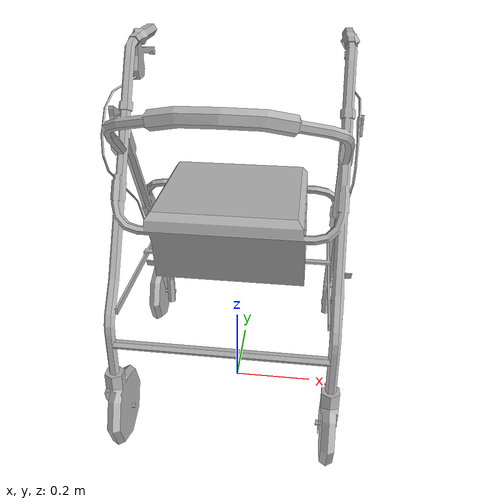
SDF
<sdf version="1.6">
  <model name="RollingWalker">
   <static>true</static>
    <link name="body">
      <pose>0 0 0 0 0 0</pose>

      <visual name="visual">
        <geometry>
          <mesh>
            <uri>model://RollingWalker/meshes/RollingWalker.obj</uri>
          </mesh>
        </geometry>
      </visual>

      <collision name="collision">
        <geometry>
          <mesh>
            <uri>model://RollingWalker/meshes/RollingWalker_Col.obj</uri>
          </mesh>
        </geometry>
      </collision>

    </link>
  </model>
</sdf>
